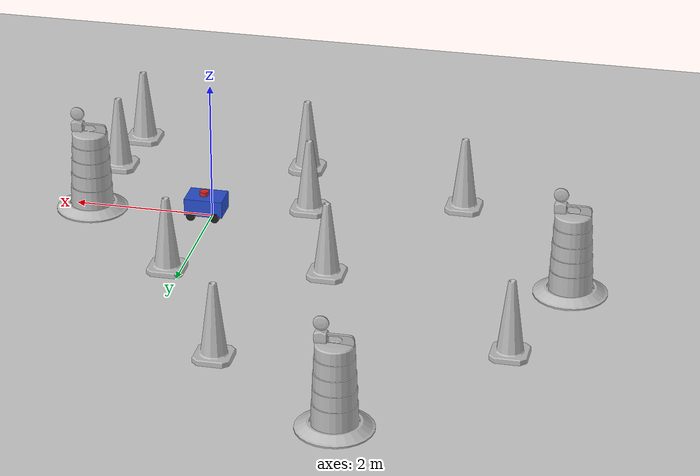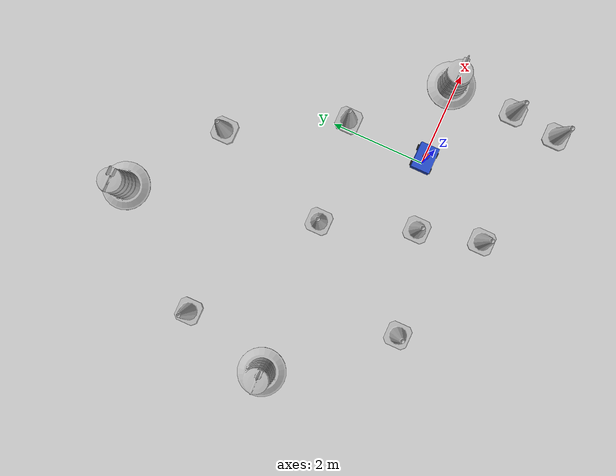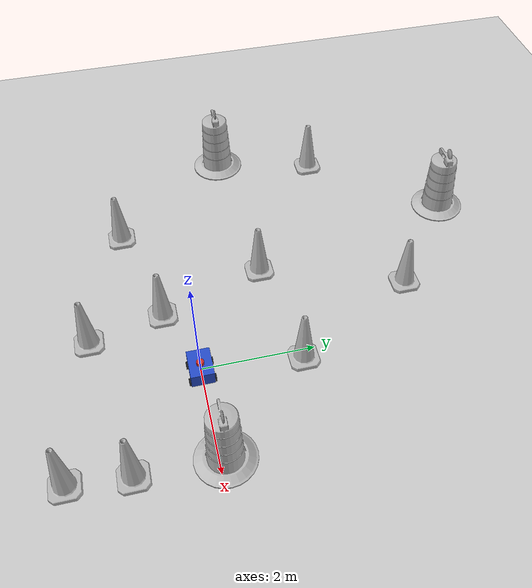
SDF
<sdf version="1.7">
 <world name="default">
  <light name="sun" type="directional">
   <pose>0 0 10 0 -0 0</pose>
   <diffuse>0.8 0.8 0.8 1</diffuse>
   <specular>0.2 0.2 0.2 1</specular>
   <attenuation>
    <range>1000</range>
    <constant>0.9</constant>
    <linear>0.01</linear>
    <quadratic>0.001</quadratic>
   </attenuation>
   <direction>-0.5 0.1 -0.9</direction>
   <spot><inner_angle>0</inner_angle><outer_angle>0</outer_angle><falloff>0</falloff></spot>
  </light>
  <model name="ground_plane">
   <static>1</static>
   <link name="link">
    <collision name="collision">
     <geometry><plane><normal>0 0 1</normal><size>100 100</size></plane></geometry>
     <surface><friction><ode><mu>100</mu><mu2>50</mu2></ode></friction></surface>
    </collision>
    <visual name="visual">
     <cast_shadows>0</cast_shadows>
     <geometry><plane><normal>0 0 1</normal><size>100 100</size></plane></geometry>
     <material>
      <script><uri>file://media/materials/scripts/gazebo.material</uri><name>Gazebo/Grey</name></script>
     </material>
    </visual>
   </link>
  </model>
  <gravity>0 0 -9.8</gravity>
  <magnetic_field>6e-06 2.3e-05 -4.2e-05</magnetic_field>
  <atmosphere type="adiabatic"/>
  <physics type="ode">
   <max_step_size>0.001</max_step_size>
   <real_time_factor>1</real_time_factor>
   <real_time_update_rate>1000</real_time_update_rate>
  </physics>
  <scene><ambient>0.4 0.4 0.4 1</ambient><background>0.7 0.7 0.7 1</background><shadows>1</shadows></scene>
  <audio><device>default</device></audio>
  <spherical_coordinates>
   <surface_model>EARTH_WGS84</surface_model>
   <latitude_deg>0</latitude_deg>
   <longitude_deg>0</longitude_deg>
   <elevation>0</elevation>
   <heading_deg>0</heading_deg>
  </spherical_coordinates>
  <model name="Construction Cone">
   <link name="link">
    <collision name="collision">
     <geometry>
      <mesh><scale>10 10 10</scale><uri>model://construction_cone/meshes/construction_cone.dae</uri></mesh>
     </geometry>
    </collision>
    <visual name="visual">
     <geometry>
      <mesh><scale>10 10 10</scale><uri>model://construction_cone/meshes/construction_cone.dae</uri></mesh>
     </geometry>
    </visual>
    <inertial>
     <inertia><ixx>1</ixx><ixy>0</ixy><ixz>0</ixz><iyy>1</iyy><iyz>0</iyz><izz>1</izz></inertia>
     <mass>1</mass>
    </inertial>
   </link>
   <pose>-3.46055 -0.996774 -0 0 -0 0</pose>
  </model>
  <model name="Construction Cone_0">
   <link name="link">
    <collision name="collision">
     <geometry>
      <mesh><scale>10 10 10</scale><uri>model://construction_cone/meshes/construction_cone.dae</uri></mesh>
     </geometry>
    </collision>
    <visual name="visual">
     <geometry>
      <mesh><scale>10 10 10</scale><uri>model://construction_cone/meshes/construction_cone.dae</uri></mesh>
     </geometry>
    </visual>
    <inertial>
     <inertia><ixx>1</ixx><ixy>0</ixy><ixz>0</ixz><iyy>1</iyy><iyz>0</iyz><izz>1</izz></inertia>
     <mass>1</mass>
    </inertial>
   </link>
   <pose>1.65218 -2.32043 -1e-05 0 -0 0</pose>
  </model>
  <model name="Construction Cone_1">
   <link name="link">
    <collision name="collision">
     <geometry>
      <mesh><scale>10 10 10</scale><uri>model://construction_cone/meshes/construction_cone.dae</uri></mesh>
     </geometry>
    </collision>
    <visual name="visual">
     <geometry>
      <mesh><scale>10 10 10</scale><uri>model://construction_cone/meshes/construction_cone.dae</uri></mesh>
     </geometry>
    </visual>
    <inertial>
     <inertia><ixx>1</ixx><ixy>0</ixy><ixz>0</ixz><iyy>1</iyy><iyz>0</iyz><izz>1</izz></inertia>
     <mass>1</mass>
    </inertial>
   </link>
   <pose>-4.78185 3.13804 -0 2e-06 -2e-06 -0</pose>
  </model>
  <model name="Construction Barrel">
   <link name="link">
    <inertial>
     <pose>0 0 0.4 0 -0 0</pose>
     <mass>500</mass>
     <inertia><ixx>51.2096</ixx><iyy>51.2096</iyy><izz>25</izz><ixy>0</ixy><ixz>0</ixz><iyz>0</iyz></inertia>
    </inertial>
    <collision name="collision">
     <geometry><mesh><uri>model://construction_barrel/meshes/construction_barrel.dae</uri></mesh></geometry>
    </collision>
    <visual name="visual">
     <geometry><mesh><uri>model://construction_barrel/meshes/construction_barrel.dae</uri></mesh></geometry>
    </visual>
   </link>
   <pose>1.74551 0.10688 -1e-06 2e-06 -1e-06 -1.4e-05</pose>
  </model>
  <model name="Construction Barrel_0">
   <link name="link">
    <inertial>
     <pose>0 0 0.4 0 -0 0</pose>
     <mass>500</mass>
     <inertia><ixx>51.2096</ixx><iyy>51.2096</iyy><izz>25</izz><ixy>0</ixy><ixz>0</ixz><iyz>0</iyz></inertia>
    </inertial>
    <collision name="collision">
     <geometry><mesh><uri>model://construction_barrel/meshes/construction_barrel.dae</uri></mesh></geometry>
    </collision>
    <visual name="visual">
     <geometry><mesh><uri>model://construction_barrel/meshes/construction_barrel.dae</uri></mesh></geometry>
    </visual>
   </link>
   <pose>-2.95648 5.41982 -2e-06 4e-06 7e-06 -1.6e-05</pose>
  </model>
  <model name="Construction Cone_2">
   <link name="link">
    <collision name="collision">
     <geometry>
      <mesh><scale>10 10 10</scale><uri>model://construction_cone/meshes/construction_cone.dae</uri></mesh>
     </geometry>
    </collision>
    <visual name="visual">
     <geometry>
      <mesh><scale>10 10 10</scale><uri>model://construction_cone/meshes/construction_cone.dae</uri></mesh>
     </geometry>
    </visual>
    <inertial>
     <inertia><ixx>1</ixx><ixy>0</ixy><ixz>0</ixz><iyy>1</iyy><iyz>0</iyz><izz>1</izz></inertia>
     <mass>1</mass>
    </inertial>
   </link>
   <pose>-0.984466 -1.79424 -0 0 -0 0</pose>
  </model>
  <model name="Construction Cone_3">
   <link name="link">
    <collision name="collision">
     <geometry>
      <mesh><scale>10 10 10</scale><uri>model://construction_cone/meshes/construction_cone.dae</uri></mesh>
     </geometry>
    </collision>
    <visual name="visual">
     <geometry>
      <mesh><scale>10 10 10</scale><uri>model://construction_cone/meshes/construction_cone.dae</uri></mesh>
     </geometry>
    </visual>
    <inertial>
     <inertia><ixx>1</ixx><ixy>0</ixy><ixz>0</ixz><iyy>1</iyy><iyz>0</iyz><izz>1</izz></inertia>
     <mass>1</mass>
    </inertial>
   </link>
   <pose>-1.06075 4.02561 -0 0 -0 0</pose>
  </model>
  <model name="my_bot">
   <link name="base_link">
    <inertial>
     <pose>0.221875 0 0.113125 0 -0 0</pose>
     <mass>0.8</mass>
     <inertia>
      <ixx>0.0230924</ixx>
      <ixy>0</ixy>
      <ixz>0.00354219</ixz>
      <iyy>0.0256108</iyy>
      <iyz>-2.14228e-20</iyz>
      <izz>0.032183</izz>
     </inertia>
    </inertial>
    <collision name="base_link_fixed_joint_lump__chassis_collision">
     <pose>0.175 0 0.125 0 -0 0</pose>
     <geometry><box><size>0.55 0.4 0.25</size></box></geometry>
    </collision>
    <collision name="base_link_fixed_joint_lump__front_left_wheel_collision_1">
     <pose>0.35 0.2 0 -1.5708 0 0</pose>
     <geometry><cylinder><length>0.06</length><radius>0.065</radius></cylinder></geometry>
    </collision>
    <collision name="base_link_fixed_joint_lump__front_right_wheel_collision_2">
     <pose>0.35 -0.2 0 1.5708 -0 0</pose>
     <geometry><cylinder><length>0.06</length><radius>0.065</radius></cylinder></geometry>
    </collision>
    <collision name="base_link_fixed_joint_lump__laser_frame_collision_3">
     <pose>0.2 0 0.28 0 -0 0</pose>
     <geometry><cylinder><length>0.06</length><radius>0.065</radius></cylinder></geometry>
    </collision>
    <visual name="base_link_fixed_joint_lump__chassis_visual">
     <pose>0.175 0 0.125 0 -0 0</pose>
     <geometry><box><size>0.55 0.4 0.25</size></box></geometry>
     <material>
      <script><name>Gazebo/Blue</name><uri>file://media/materials/scripts/gazebo.material</uri></script>
     </material>
    </visual>
    <visual name="base_link_fixed_joint_lump__front_left_wheel_visual_1">
     <pose>0.35 0.2 0 -1.5708 0 0</pose>
     <geometry><cylinder><length>0.06</length><radius>0.065</radius></cylinder></geometry>
     <material>
      <script><name>Gazebo/Black</name><uri>file://media/materials/scripts/gazebo.material</uri></script>
     </material>
    </visual>
    <visual name="base_link_fixed_joint_lump__front_right_wheel_visual_2">
     <pose>0.35 -0.2 0 1.5708 -0 0</pose>
     <geometry><cylinder><length>0.06</length><radius>0.065</radius></cylinder></geometry>
     <material>
      <script><name>Gazebo/Black</name><uri>file://media/materials/scripts/gazebo.material</uri></script>
     </material>
    </visual>
    <visual name="base_link_fixed_joint_lump__laser_frame_visual_3">
     <pose>0.2 0 0.28 0 -0 0</pose>
     <geometry><cylinder><length>0.06</length><radius>0.065</radius></cylinder></geometry>
     <material>
      <script><name>Gazebo/Red</name><uri>file://media/materials/scripts/gazebo.material</uri></script>
     </material>
    </visual>
    <sensor name="laser" type="ray">
     <visualize>1</visualize>
     <update_rate>10</update_rate>
     <ray>
      <scan>
       <horizontal>
        <samples>360</samples>
        <min_angle>-3.14</min_angle>
        <max_angle>3.14</max_angle>
        <resolution>1</resolution>
       </horizontal>
       <vertical><samples>1</samples><min_angle>0</min_angle><max_angle>0</max_angle></vertical>
      </scan>
      <range><min>0.3</min><max>12</max></range>
     </ray>
     <plugin name="laser_controller" filename="libgazebo_ros_ray_sensor.so">
      <ros><argument>~/out:=scan</argument></ros>
      <output_type>sensor_msgs/LaserScan</output_type>
      <frame_name>laser_frame</frame_name>
     </plugin>
     <pose>0.2 0 0.28 0 -0 0</pose>
    </sensor>
   </link>
   <joint name="back_left_wheel_joint" type="revolute">
    <pose relative_to="base_link">0 0.2 0 -1.5708 0 0</pose>
    <parent>base_link</parent>
    <child>back_left_wheel</child>
    <axis>
     <xyz>0 0 1</xyz>
     <limit><lower>-1e+16</lower><upper>1e+16</upper></limit>
     <dynamics><spring_reference>0</spring_reference><spring_stiffness>0</spring_stiffness></dynamics>
    </axis>
   </joint>
   <link name="back_left_wheel">
    <pose relative_to="back_left_wheel_joint">0 0 0 0 -0 0</pose>
    <inertial>
     <mass>0.1</mass>
     <inertia>
      <ixx>0.000135625</ixx>
      <ixy>0</ixy>
      <ixz>0</ixz>
      <iyy>0.000135625</iyy>
      <iyz>0</iyz>
      <izz>0.00021125</izz>
     </inertia>
    </inertial>
    <collision name="back_left_wheel_collision">
     <geometry><cylinder><length>0.06</length><radius>0.065</radius></cylinder></geometry>
    </collision>
    <visual name="back_left_wheel_visual">
     <geometry><cylinder><length>0.06</length><radius>0.065</radius></cylinder></geometry>
     <material>
      <script><name>Gazebo/Black</name><uri>file://media/materials/scripts/gazebo.material</uri></script>
     </material>
    </visual>
   </link>
   <joint name="back_right_wheel_joint" type="revolute">
    <pose relative_to="base_link">0 -0.2 0 1.5708 -0 0</pose>
    <parent>base_link</parent>
    <child>back_right_wheel</child>
    <axis>
     <xyz>0 0 -1</xyz>
     <limit><lower>-1e+16</lower><upper>1e+16</upper></limit>
     <dynamics><spring_reference>0</spring_reference><spring_stiffness>0</spring_stiffness></dynamics>
    </axis>
   </joint>
   <link name="back_right_wheel">
    <pose relative_to="back_right_wheel_joint">0 0 0 0 -0 0</pose>
    <inertial>
     <mass>0.1</mass>
     <inertia>
      <ixx>0.000135625</ixx>
      <ixy>0</ixy>
      <ixz>0</ixz>
      <iyy>0.000135625</iyy>
      <iyz>0</iyz>
      <izz>0.00021125</izz>
     </inertia>
    </inertial>
    <collision name="back_right_wheel_collision">
     <geometry><cylinder><length>0.06</length><radius>0.065</radius></cylinder></geometry>
    </collision>
    <visual name="back_right_wheel_visual">
     <geometry><cylinder><length>0.06</length><radius>0.065</radius></cylinder></geometry>
     <material>
      <script><name>Gazebo/Black</name><uri>file://media/materials/scripts/gazebo.material</uri></script>
     </material>
    </visual>
   </link>
   <static>0</static>
   <plugin name="gazebo_ros2_control" filename="libgazebo_ros2_control.so">
    <parameters>/home/alaa/bot_ws/install/my_bot/share/my_bot/config/my_controllers.yaml</parameters>
    <parameters>/home/alaa/bot_ws/install/my_bot/share/my_bot/config/gaz_ros2_ctl_use_sim.yaml</parameters>
   </plugin>
   <pose>-0.086837 0.000857 0.065 0 1e-06 -0.00114</pose>
  </model>
  <model name="Construction Barrel_1">
   <link name="link">
    <inertial>
     <pose>0 0 0.4 0 -0 0</pose>
     <mass>500</mass>
     <inertia><ixx>51.2096</ixx><iyy>51.2096</iyy><izz>25</izz><ixy>0</ixy><ixz>0</ixz><iyz>0</iyz></inertia>
    </inertial>
    <collision name="collision">
     <geometry><mesh><uri>model://construction_barrel/meshes/construction_barrel.dae</uri></mesh></geometry>
    </collision>
    <visual name="visual">
     <geometry><mesh><uri>model://construction_barrel/meshes/construction_barrel.dae</uri></mesh></geometry>
    </visual>
   </link>
   <pose>-5.30239 1.25275 -2e-06 -0 7e-06 -8e-06</pose>
  </model>
  <model name="Construction Cone_4">
   <link name="link">
    <collision name="collision">
     <geometry>
      <mesh><scale>10 10 10</scale><uri>model://construction_cone/meshes/construction_cone.dae</uri></mesh>
     </geometry>
    </collision>
    <visual name="visual">
     <geometry>
      <mesh><scale>10 10 10</scale><uri>model://construction_cone/meshes/construction_cone.dae</uri></mesh>
     </geometry>
    </visual>
    <inertial>
     <inertia><ixx>1</ixx><ixy>0</ixy><ixz>0</ixz><iyy>1</iyy><iyz>0</iyz><izz>1</izz></inertia>
     <mass>1</mass>
    </inertial>
   </link>
   <pose>-1.31129 -0.467048 -0 0 -1e-06 0</pose>
  </model>
  <model name="Construction Cone_5">
   <link name="link">
    <collision name="collision">
     <geometry>
      <mesh><scale>10 10 10</scale><uri>model://construction_cone/meshes/construction_cone.dae</uri></mesh>
     </geometry>
    </collision>
    <visual name="visual">
     <geometry>
      <mesh><scale>10 10 10</scale><uri>model://construction_cone/meshes/construction_cone.dae</uri></mesh>
     </geometry>
    </visual>
    <inertial>
     <inertia><ixx>1</ixx><ixy>0</ixy><ixz>0</ixz><iyy>1</iyy><iyz>0</iyz><izz>1</izz></inertia>
     <mass>1</mass>
    </inertial>
   </link>
   <pose>-1.98685 1.45419 -1e-05 -1e-06 0 0</pose>
  </model>
  <model name="Construction Cone_6">
   <link name="link">
    <collision name="collision">
     <geometry>
      <mesh><scale>10 10 10</scale><uri>model://construction_cone/meshes/construction_cone.dae</uri></mesh>
     </geometry>
    </collision>
    <visual name="visual">
     <geometry>
      <mesh><scale>10 10 10</scale><uri>model://construction_cone/meshes/construction_cone.dae</uri></mesh>
     </geometry>
    </visual>
    <inertial>
     <inertia><ixx>1</ixx><ixy>0</ixy><ixz>0</ixz><iyy>1</iyy><iyz>0</iyz><izz>1</izz></inertia>
     <mass>1</mass>
    </inertial>
   </link>
   <pose>1.74678 -1.30597 -0 0 -0 0</pose>
  </model>
  <model name="Construction Cone_7">
   <link name="link">
    <collision name="collision">
     <geometry>
      <mesh><scale>10 10 10</scale><uri>model://construction_cone/meshes/construction_cone.dae</uri></mesh>
     </geometry>
    </collision>
    <visual name="visual">
     <geometry>
      <mesh><scale>10 10 10</scale><uri>model://construction_cone/meshes/construction_cone.dae</uri></mesh>
     </geometry>
    </visual>
    <inertial>
     <inertia><ixx>1</ixx><ixy>0</ixy><ixz>0</ixz><iyy>1</iyy><iyz>0</iyz><izz>1</izz></inertia>
     <mass>1</mass>
    </inertial>
   </link>
   <pose>0.186585 1.75671 -0 0 -1e-06 0</pose>
  </model>
 </world>
</sdf>
